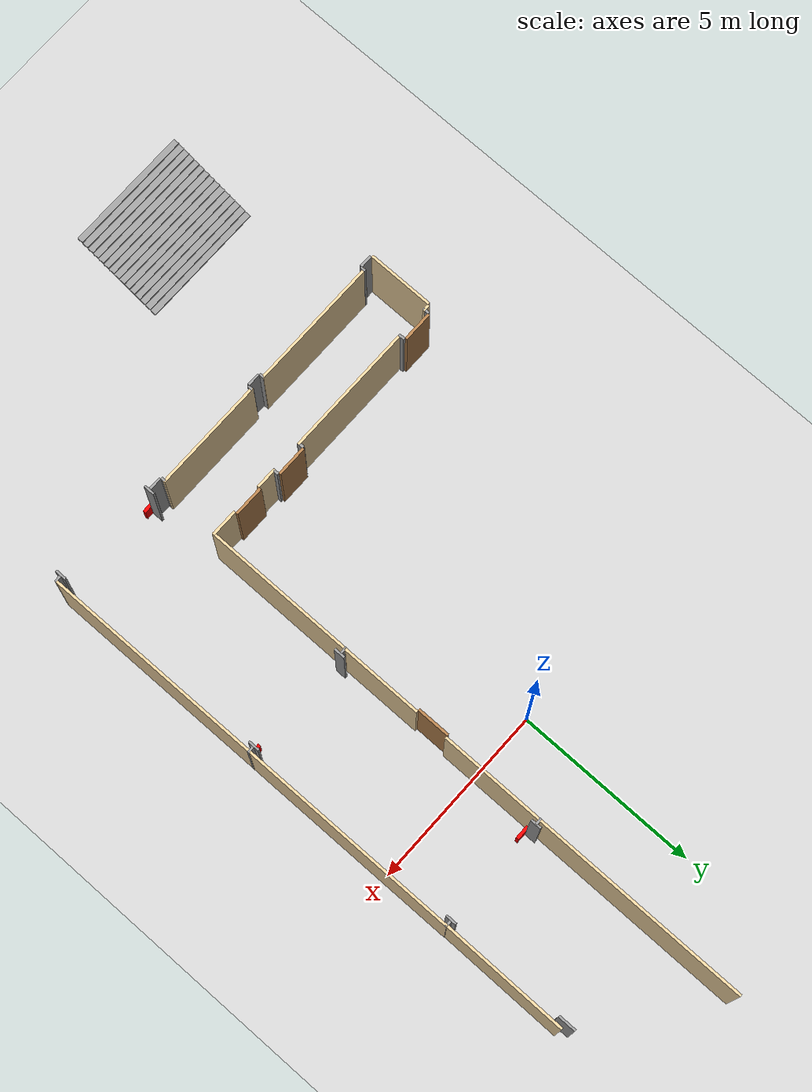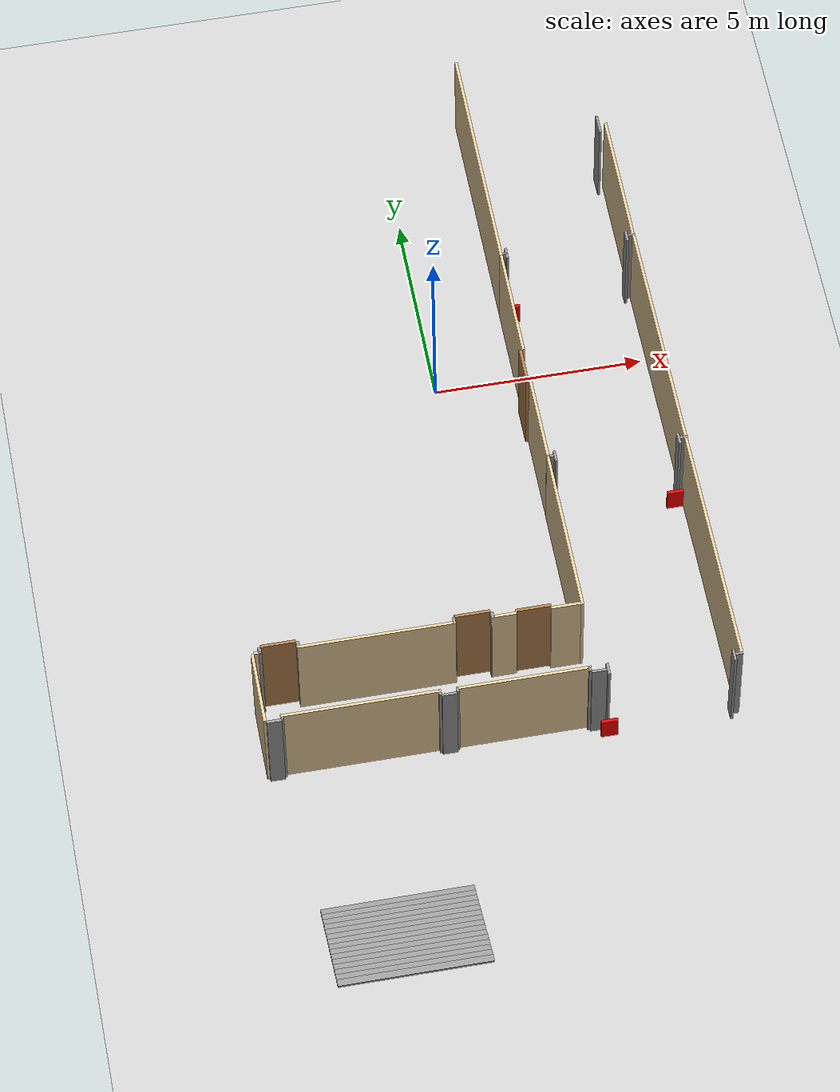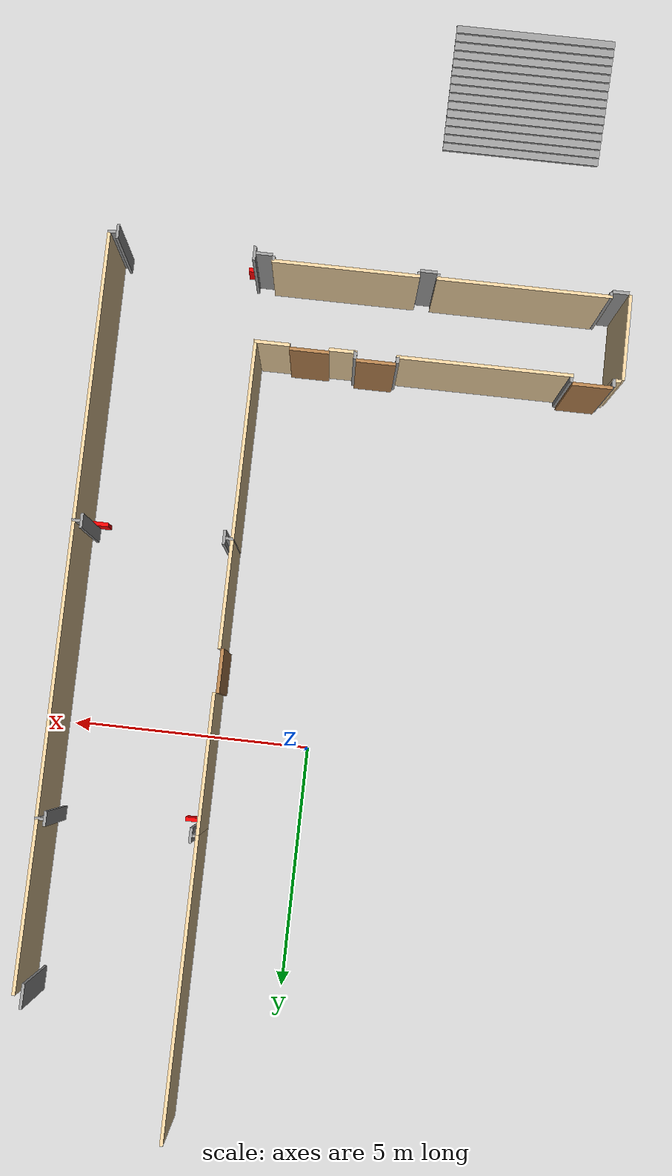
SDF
<sdf version="1.7">
 <world name="default">
  <model name="ground_plane">
   <static>1</static>
   <link name="link">
    <collision name="collision">
     <geometry><plane><normal>0 0 1</normal><size>100 100</size></plane></geometry>
     <surface>
      <contact><collide_bitmask>65535</collide_bitmask></contact>
      <friction><ode><mu>100</mu><mu2>50</mu2></ode></friction>
     </surface>
    </collision>
    <visual name="visual">
     <cast_shadows>0</cast_shadows>
     <geometry><plane><normal>0 0 1</normal><size>100 100</size></plane></geometry>
     <material>
      <script><uri>file://media/materials/scripts/gazebo.material</uri><name>Gazebo/Grey</name></script>
     </material>
    </visual>
   </link>
  </model>
  <model name="Fakulte_koridor">
   <pose>-0.108629 -0.105707 0 0 -0 0</pose>
   <link name="Stairs_0">
    <visual name="Stairs_0_Visual_0">
     <pose>-3.19496 -13.5268 0.033333 0 -0 0</pose>
     <geometry><box><size>3.48995 0.166667 0.066667</size></box></geometry>
     <material>
      <script><uri>file://media/materials/scripts/gazebo.material</uri><name>Gazebo/Grey</name></script>
      <ambient>0.333333 0.341176 0.32549 1</ambient>
     </material>
     <meta><layer>0</layer></meta>
    </visual>
    <collision name="Stairs_0_Collision_0">
     <geometry><box><size>3.48995 0.166667 0.066667</size></box></geometry>
     <pose>-3.19496 -13.5268 0.033333 0 -0 0</pose>
    </collision>
    <visual name="Stairs_0_Visual_1">
     <pose>-3.19496 -13.6934 0.1 0 -0 0</pose>
     <geometry><box><size>3.48995 0.166667 0.066667</size></box></geometry>
     <material>
      <script><uri>file://media/materials/scripts/gazebo.material</uri><name>Gazebo/Grey</name></script>
      <ambient>0.333333 0.341176 0.32549 1</ambient>
     </material>
     <meta><layer>0</layer></meta>
    </visual>
    <collision name="Stairs_0_Collision_1">
     <geometry><box><size>3.48995 0.166667 0.066667</size></box></geometry>
     <pose>-3.19496 -13.6934 0.1 0 -0 0</pose>
    </collision>
    <visual name="Stairs_0_Visual_2">
     <pose>-3.19496 -13.8601 0.166667 0 -0 0</pose>
     <geometry><box><size>3.48995 0.166667 0.066667</size></box></geometry>
     <material>
      <script><uri>file://media/materials/scripts/gazebo.material</uri><name>Gazebo/Grey</name></script>
      <ambient>0.333333 0.341176 0.32549 1</ambient>
     </material>
     <meta><layer>0</layer></meta>
    </visual>
    <collision name="Stairs_0_Collision_2">
     <geometry><box><size>3.48995 0.166667 0.066667</size></box></geometry>
     <pose>-3.19496 -13.8601 0.166667 0 -0 0</pose>
    </collision>
    <visual name="Stairs_0_Visual_3">
     <pose>-3.19496 -14.0268 0.233333 0 -0 0</pose>
     <geometry><box><size>3.48995 0.166667 0.066667</size></box></geometry>
     <material>
      <script><uri>file://media/materials/scripts/gazebo.material</uri><name>Gazebo/Grey</name></script>
      <ambient>0.333333 0.341176 0.32549 1</ambient>
     </material>
     <meta><layer>0</layer></meta>
    </visual>
    <collision name="Stairs_0_Collision_3">
     <geometry><box><size>3.48995 0.166667 0.066667</size></box></geometry>
     <pose>-3.19496 -14.0268 0.233333 0 -0 0</pose>
    </collision>
    <visual name="Stairs_0_Visual_4">
     <pose>-3.19496 -14.1934 0.3 0 -0 0</pose>
     <geometry><box><size>3.48995 0.166667 0.066667</size></box></geometry>
     <material>
      <script><uri>file://media/materials/scripts/gazebo.material</uri><name>Gazebo/Grey</name></script>
      <ambient>0.333333 0.341176 0.32549 1</ambient>
     </material>
     <meta><layer>0</layer></meta>
    </visual>
    <collision name="Stairs_0_Collision_4">
     <geometry><box><size>3.48995 0.166667 0.066667</size></box></geometry>
     <pose>-3.19496 -14.1934 0.3 0 -0 0</pose>
    </collision>
    <visual name="Stairs_0_Visual_5">
     <pose>-3.19496 -14.3601 0.366667 0 -0 0</pose>
     <geometry><box><size>3.48995 0.166667 0.066667</size></box></geometry>
     <material>
      <script><uri>file://media/materials/scripts/gazebo.material</uri><name>Gazebo/Grey</name></script>
      <ambient>0.333333 0.341176 0.32549 1</ambient>
     </material>
     <meta><layer>0</layer></meta>
    </visual>
    <collision name="Stairs_0_Collision_5">
     <geometry><box><size>3.48995 0.166667 0.066667</size></box></geometry>
     <pose>-3.19496 -14.3601 0.366667 0 -0 0</pose>
    </collision>
    <visual name="Stairs_0_Visual_6">
     <pose>-3.19496 -14.5268 0.433333 0 -0 0</pose>
     <geometry><box><size>3.48995 0.166667 0.066667</size></box></geometry>
     <material>
      <script><uri>file://media/materials/scripts/gazebo.material</uri><name>Gazebo/Grey</name></script>
      <ambient>0.333333 0.341176 0.32549 1</ambient>
     </material>
     <meta><layer>0</layer></meta>
    </visual>
    <collision name="Stairs_0_Collision_6">
     <geometry><box><size>3.48995 0.166667 0.066667</size></box></geometry>
     <pose>-3.19496 -14.5268 0.433333 0 -0 0</pose>
    </collision>
    <visual name="Stairs_0_Visual_7">
     <pose>-3.19496 -14.6934 0.5 0 -0 0</pose>
     <geometry><box><size>3.48995 0.166667 0.066667</size></box></geometry>
     <material>
      <script><uri>file://media/materials/scripts/gazebo.material</uri><name>Gazebo/Grey</name></script>
      <ambient>0.333333 0.341176 0.32549 1</ambient>
     </material>
     <meta><layer>0</layer></meta>
    </visual>
    <collision name="Stairs_0_Collision_7">
     <geometry><box><size>3.48995 0.166667 0.066667</size></box></geometry>
     <pose>-3.19496 -14.6934 0.5 0 -0 0</pose>
    </collision>
    <visual name="Stairs_0_Visual_8">
     <pose>-3.19496 -14.8601 0.566667 0 -0 0</pose>
     <geometry><box><size>3.48995 0.166667 0.066667</size></box></geometry>
     <material>
      <script><uri>file://media/materials/scripts/gazebo.material</uri><name>Gazebo/Grey</name></script>
      <ambient>0.333333 0.341176 0.32549 1</ambient>
     </material>
     <meta><layer>0</layer></meta>
    </visual>
    <collision name="Stairs_0_Collision_8">
     <geometry><box><size>3.48995 0.166667 0.066667</size></box></geometry>
     <pose>-3.19496 -14.8601 0.566667 0 -0 0</pose>
    </collision>
    <visual name="Stairs_0_Visual_9">
     <pose>-3.19496 -15.0268 0.633333 0 -0 0</pose>
     <geometry><box><size>3.48995 0.166667 0.066667</size></box></geometry>
     <material>
      <script><uri>file://media/materials/scripts/gazebo.material</uri><name>Gazebo/Grey</name></script>
      <ambient>0.333333 0.341176 0.32549 1</ambient>
     </material>
     <meta><layer>0</layer></meta>
    </visual>
    <collision name="Stairs_0_Collision_9">
     <geometry><box><size>3.48995 0.166667 0.066667</size></box></geometry>
     <pose>-3.19496 -15.0268 0.633333 0 -0 0</pose>
    </collision>
    <visual name="Stairs_0_Visual_10">
     <pose>-3.19496 -15.1934 0.7 0 -0 0</pose>
     <geometry><box><size>3.48995 0.166667 0.066667</size></box></geometry>
     <material>
      <script><uri>file://media/materials/scripts/gazebo.material</uri><name>Gazebo/Grey</name></script>
      <ambient>0.333333 0.341176 0.32549 1</ambient>
     </material>
     <meta><layer>0</layer></meta>
    </visual>
    <collision name="Stairs_0_Collision_10">
     <geometry><box><size>3.48995 0.166667 0.066667</size></box></geometry>
     <pose>-3.19496 -15.1934 0.7 0 -0 0</pose>
    </collision>
    <visual name="Stairs_0_Visual_11">
     <pose>-3.19496 -15.3601 0.766667 0 -0 0</pose>
     <geometry><box><size>3.48995 0.166667 0.066667</size></box></geometry>
     <material>
      <script><uri>file://media/materials/scripts/gazebo.material</uri><name>Gazebo/Grey</name></script>
      <ambient>0.333333 0.341176 0.32549 1</ambient>
     </material>
     <meta><layer>0</layer></meta>
    </visual>
    <collision name="Stairs_0_Collision_11">
     <geometry><box><size>3.48995 0.166667 0.066667</size></box></geometry>
     <pose>-3.19496 -15.3601 0.766667 0 -0 0</pose>
    </collision>
    <visual name="Stairs_0_Visual_12">
     <pose>-3.19496 -15.5268 0.833333 0 -0 0</pose>
     <geometry><box><size>3.48995 0.166667 0.066667</size></box></geometry>
     <material>
      <script><uri>file://media/materials/scripts/gazebo.material</uri><name>Gazebo/Grey</name></script>
      <ambient>0.333333 0.341176 0.32549 1</ambient>
     </material>
     <meta><layer>0</layer></meta>
    </visual>
    <collision name="Stairs_0_Collision_12">
     <geometry><box><size>3.48995 0.166667 0.066667</size></box></geometry>
     <pose>-3.19496 -15.5268 0.833333 0 -0 0</pose>
    </collision>
    <visual name="Stairs_0_Visual_13">
     <pose>-3.19496 -15.6934 0.9 0 -0 0</pose>
     <geometry><box><size>3.48995 0.166667 0.066667</size></box></geometry>
     <material>
      <script><uri>file://media/materials/scripts/gazebo.material</uri><name>Gazebo/Grey</name></script>
      <ambient>0.333333 0.341176 0.32549 1</ambient>
     </material>
     <meta><layer>0</layer></meta>
    </visual>
    <collision name="Stairs_0_Collision_13">
     <geometry><box><size>3.48995 0.166667 0.066667</size></box></geometry>
     <pose>-3.19496 -15.6934 0.9 0 -0 0</pose>
    </collision>
    <visual name="Stairs_0_Visual_14">
     <pose>-3.19496 -15.8601 0.966667 0 -0 0</pose>
     <geometry><box><size>3.48995 0.166667 0.066667</size></box></geometry>
     <material>
      <script><uri>file://media/materials/scripts/gazebo.material</uri><name>Gazebo/Grey</name></script>
      <ambient>0.333333 0.341176 0.32549 1</ambient>
     </material>
     <meta><layer>0</layer></meta>
    </visual>
    <collision name="Stairs_0_Collision_14">
     <geometry><box><size>3.48995 0.166667 0.066667</size></box></geometry>
     <pose>-3.19496 -15.8601 0.966667 0 -0 0</pose>
    </collision>
   </link>
   <link name="Wall_178">
    <collision name="Wall_178_Collision">
     <geometry><box><size>5.995 0.07 2.5</size></box></geometry>
     <pose>0 0 1.25 0 -0 0</pose>
    </collision>
    <visual name="Wall_178_Visual">
     <pose>0 0 1.25 0 -0 0</pose>
     <geometry><box><size>5.995 0.07 2.5</size></box></geometry>
     <material>
      <script><uri>file://media/materials/scripts/gazebo.material</uri><name>Gazebo/Grey</name></script>
      <ambient>0.921569 0.807843 0.615686 1</ambient>
     </material>
     <meta><layer>0</layer></meta>
    </visual>
    <pose>2.05863 5.00721 0 0 -0 -1.5708</pose>
   </link>
   <link name="Wall_180">
    <collision name="Wall_180_Collision">
     <geometry><box><size>0.175 0.06 2.5</size></box></geometry>
     <pose>0 0 1.25 0 -0 0</pose>
    </collision>
    <visual name="Wall_180_Visual">
     <pose>0 0 1.25 0 -0 0</pose>
     <geometry><box><size>0.175 0.06 2.5</size></box></geometry>
     <material>
      <script><uri>file://media/materials/scripts/gazebo.material</uri><name>Gazebo/Grey</name></script>
      <ambient>0.180392 0.203922 0.211765 1</ambient>
     </material>
     <meta><layer>0</layer></meta>
    </visual>
    <pose>2.11134 2.04088 0 0 -0 0</pose>
   </link>
   <link name="Wall_182">
    <collision name="Wall_182_Collision">
     <geometry><box><size>0.3 0.06 2.5</size></box></geometry>
     <pose>0 0 1.25 0 -0 0</pose>
    </collision>
    <visual name="Wall_182_Visual">
     <pose>0 0 1.25 0 -0 0</pose>
     <geometry><box><size>0.3 0.06 2.5</size></box></geometry>
     <material>
      <script><uri>file://media/materials/scripts/gazebo.material</uri><name>Gazebo/Grey</name></script>
      <ambient>0.180392 0.203922 0.211765 1</ambient>
     </material>
     <meta><layer>0</layer></meta>
    </visual>
    <pose>2.19078 2.04124 0 0 -0 -1.5708</pose>
   </link>
   <link name="Wall_184">
    <collision name="Wall_184_Collision">
     <geometry><box><size>2.842 0.07 2.5</size></box></geometry>
     <pose>0 0 1.25 0 -0 0</pose>
    </collision>
    <visual name="Wall_184_Visual">
     <pose>0 0 1.25 0 -0 0</pose>
     <geometry><box><size>2.842 0.07 2.5</size></box></geometry>
     <material>
      <script><uri>file://media/materials/scripts/gazebo.material</uri><name>Gazebo/Grey</name></script>
      <ambient>0.921569 0.807843 0.615686 1</ambient>
     </material>
     <meta><layer>0</layer></meta>
    </visual>
    <pose>2.05811 0.604001 0 0 -0 -1.5708</pose>
   </link>
   <link name="Wall_186">
    <collision name="Wall_186_Collision">
     <geometry><box><size>2.21 0.07 2.5</size></box></geometry>
     <pose>0 0 1.25 0 -0 0</pose>
    </collision>
    <visual name="Wall_186_Visual">
     <pose>0 0 1.25 0 -0 0</pose>
     <geometry><box><size>2.21 0.07 2.5</size></box></geometry>
     <material>
      <script><uri>file://media/materials/scripts/gazebo.material</uri><name>Gazebo/Grey</name></script>
      <ambient>0.921569 0.807843 0.615686 1</ambient>
     </material>
     <meta><layer>0</layer></meta>
    </visual>
    <pose>2.05119 -2.80108 0 0 -0 -1.5708</pose>
   </link>
   <link name="Wall_188">
    <collision name="Wall_188_Collision">
     <geometry><box><size>0.895 0.07 2.5</size></box></geometry>
     <pose>0 0 1.25 0 -0 0</pose>
    </collision>
    <visual name="Wall_188_Visual">
     <pose>0 0 1.25 0 -0 0</pose>
     <geometry><box><size>0.895 0.07 2.5</size></box></geometry>
     <material>
      <script><uri>file://media/materials/scripts/gazebo.material</uri><name>Gazebo/Wood</name></script>
      <ambient>1 1 1 1</ambient>
     </material>
     <meta><layer>0</layer></meta>
    </visual>
    <pose>1.98547 -1.25931 0 0 -0 -1.5708</pose>
   </link>
   <link name="Wall_190">
    <collision name="Wall_190_Collision">
     <geometry><box><size>0.175 0.06 2.5</size></box></geometry>
     <pose>0 0 1.25 0 -0 0</pose>
    </collision>
    <visual name="Wall_190_Visual">
     <pose>0 0 1.25 0 -0 0</pose>
     <geometry><box><size>0.175 0.06 2.5</size></box></geometry>
     <material>
      <script><uri>file://media/materials/scripts/gazebo.material</uri><name>Gazebo/Grey</name></script>
      <ambient>0.180392 0.203922 0.211765 1</ambient>
     </material>
     <meta><layer>0</layer></meta>
    </visual>
    <pose>2.09974 -3.92485 0 0 -0 0</pose>
   </link>
   <link name="Wall_342">
    <collision name="Wall_342_Collision">
     <geometry><box><size>0.3 0.06 2.5</size></box></geometry>
     <pose>0 0 1.25 0 -0 0</pose>
    </collision>
    <visual name="Wall_342_Visual">
     <pose>0 0 1.25 0 -0 0</pose>
     <geometry><box><size>0.3 0.06 2.5</size></box></geometry>
     <material>
      <script><uri>file://media/materials/scripts/gazebo.material</uri><name>Gazebo/Grey</name></script>
      <ambient>0.180392 0.203922 0.211765 1</ambient>
     </material>
     <meta><layer>0</layer></meta>
    </visual>
    <pose>2.21449 -3.94612 0 0 -0 -1.5708</pose>
   </link>
   <link name="Wall_344">
    <collision name="Wall_344_Collision">
     <geometry><box><size>4.16 0.07 2.5</size></box></geometry>
     <pose>0 0 1.25 0 -0 0</pose>
    </collision>
    <visual name="Wall_344_Visual">
     <pose>0 0 1.25 0 -0 0</pose>
     <geometry><box><size>4.16 0.07 2.5</size></box></geometry>
     <material>
      <script><uri>file://media/materials/scripts/gazebo.material</uri><name>Gazebo/Grey</name></script>
      <ambient>0.921569 0.807843 0.615686 1</ambient>
     </material>
     <meta><layer>0</layer></meta>
    </visual>
    <pose>2.04668 -5.99595 0 0 -0 -1.5708</pose>
   </link>
   <link name="Wall_348">
    <collision name="Wall_348_Collision">
     <geometry><box><size>0.745 0.07 2.5</size></box></geometry>
     <pose>0 0 1.25 0 -0 0</pose>
    </collision>
    <visual name="Wall_348_Visual">
     <pose>0 0 1.25 0 -0 0</pose>
     <geometry><box><size>0.745 0.07 2.5</size></box></geometry>
     <material>
      <script><uri>file://media/materials/scripts/gazebo.material</uri><name>Gazebo/Grey</name></script>
      <ambient>0.921569 0.807843 0.615686 1</ambient>
     </material>
     <meta><layer>0</layer></meta>
    </visual>
    <pose>1.70111 -8.03814 0 0 -0 0</pose>
   </link>
   <link name="Wall_350">
    <collision name="Wall_350_Collision">
     <geometry><box><size>0.825 0.07 2.5</size></box></geometry>
     <pose>0 0 1.25 0 -0 0</pose>
    </collision>
    <visual name="Wall_350_Visual">
     <pose>0 0 1.25 0 -0 0</pose>
     <geometry><box><size>0.825 0.07 2.5</size></box></geometry>
     <material>
      <script><uri>file://media/materials/scripts/gazebo.material</uri><name>Gazebo/Wood</name></script>
      <ambient>1 1 1 1</ambient>
     </material>
     <meta><layer>0</layer></meta>
    </visual>
    <pose>0.927815 -7.96515 0 0 -0 3.14159</pose>
   </link>
   <link name="Wall_352">
    <collision name="Wall_352_Collision">
     <geometry><box><size>0.58 0.07 2.5</size></box></geometry>
     <pose>0 0 1.25 0 -0 0</pose>
    </collision>
    <visual name="Wall_352_Visual">
     <pose>0 0 1.25 0 -0 0</pose>
     <geometry><box><size>0.58 0.07 2.5</size></box></geometry>
     <material>
      <script><uri>file://media/materials/scripts/gazebo.material</uri><name>Gazebo/Grey</name></script>
      <ambient>0.921569 0.807843 0.615686 1</ambient>
     </material>
     <meta><layer>0</layer></meta>
    </visual>
    <pose>0.242096 -8.03226 0 0 -0 0</pose>
   </link>
   <link name="Wall_354">
    <collision name="Wall_354_Collision">
     <geometry><box><size>0.17 0.07 2.5</size></box></geometry>
     <pose>0 0 1.25 0 -0 0</pose>
    </collision>
    <visual name="Wall_354_Visual">
     <pose>0 0 1.25 0 -0 0</pose>
     <geometry><box><size>0.17 0.07 2.5</size></box></geometry>
     <material>
      <script><uri>file://media/materials/scripts/gazebo.material</uri><name>Gazebo/Grey</name></script>
      <ambient>1 1 1 1</ambient>
     </material>
     <meta><layer>0</layer></meta>
    </visual>
    <pose>-0.019371 -7.98029 0 0 -0 1.5708</pose>
   </link>
   <link name="Wall_356">
    <collision name="Wall_356_Collision">
     <geometry><box><size>0.825 0.07 2.5</size></box></geometry>
     <pose>0 0 1.25 0 -0 0</pose>
    </collision>
    <visual name="Wall_356_Visual">
     <pose>0 0 1.25 0 -0 0</pose>
     <geometry><box><size>0.825 0.07 2.5</size></box></geometry>
     <material>
      <script><uri>file://media/materials/scripts/gazebo.material</uri><name>Gazebo/Wood</name></script>
      <ambient>1 1 1 1</ambient>
     </material>
     <meta><layer>0</layer></meta>
    </visual>
    <pose>-0.460042 -7.86803 0 0 -0 0</pose>
   </link>
   <link name="Wall_358">
    <collision name="Wall_358_Collision">
     <geometry><box><size>0.17 0.07 2.5</size></box></geometry>
     <pose>0 0 1.25 0 -0 0</pose>
    </collision>
    <visual name="Wall_358_Visual">
     <pose>0 0 1.25 0 -0 0</pose>
     <geometry><box><size>0.17 0.07 2.5</size></box></geometry>
     <material>
      <script><uri>file://media/materials/scripts/gazebo.material</uri><name>Gazebo/Grey</name></script>
      <ambient>1 1 1 1</ambient>
     </material>
     <meta><layer>0</layer></meta>
    </visual>
    <pose>-0.896745 -7.97567 0 0 -0 -1.5708</pose>
   </link>
   <link name="Wall_360">
    <collision name="Wall_360_Collision">
     <geometry><box><size>3.637 0.07 2.5</size></box></geometry>
     <pose>0 0 1.25 0 -0 0</pose>
    </collision>
    <visual name="Wall_360_Visual">
     <pose>0 0 1.25 0 -0 0</pose>
     <geometry><box><size>3.637 0.07 2.5</size></box></geometry>
     <material>
      <script><uri>file://media/materials/scripts/gazebo.material</uri><name>Gazebo/Grey</name></script>
      <ambient>0.921569 0.807843 0.615686 1</ambient>
     </material>
     <meta><layer>0</layer></meta>
    </visual>
    <pose>-2.68603 -8.02689 0 0 -0 0</pose>
   </link>
   <link name="Wall_362">
    <collision name="Wall_362_Collision">
     <geometry><box><size>0.17 0.07 2.5</size></box></geometry>
     <pose>0 0 1.25 0 -0 0</pose>
    </collision>
    <visual name="Wall_362_Visual">
     <pose>0 0 1.25 0 -0 0</pose>
     <geometry><box><size>0.17 0.07 2.5</size></box></geometry>
     <material>
      <script><uri>file://media/materials/scripts/gazebo.material</uri><name>Gazebo/Grey</name></script>
      <ambient>1 1 1 1</ambient>
     </material>
     <meta><layer>0</layer></meta>
    </visual>
    <pose>-4.47183 -7.97134 0 0 -0 -1.5708</pose>
   </link>
   <link name="Wall_364">
    <collision name="Wall_364_Collision">
     <geometry><box><size>0.825 0.07 2.5</size></box></geometry>
     <pose>0 0 1.25 0 -0 0</pose>
    </collision>
    <visual name="Wall_364_Visual">
     <pose>0 0 1.25 0 -0 0</pose>
     <geometry><box><size>0.825 0.07 2.5</size></box></geometry>
     <material>
      <script><uri>file://media/materials/scripts/gazebo.material</uri><name>Gazebo/Wood</name></script>
      <ambient>1 1 1 1</ambient>
     </material>
     <meta><layer>0</layer></meta>
    </visual>
    <pose>-4.91202 -7.86091 0 0 -0 0</pose>
   </link>
   <link name="Wall_366">
    <collision name="Wall_366_Collision">
     <geometry><box><size>0.17 0.07 2.5</size></box></geometry>
     <pose>0 0 1.25 0 -0 0</pose>
    </collision>
    <visual name="Wall_366_Visual">
     <pose>0 0 1.25 0 -0 0</pose>
     <geometry><box><size>0.17 0.07 2.5</size></box></geometry>
     <material>
      <script><uri>file://media/materials/scripts/gazebo.material</uri><name>Gazebo/Grey</name></script>
      <ambient>1 1 1 1</ambient>
     </material>
     <meta><layer>0</layer></meta>
    </visual>
    <pose>-5.34479 -7.96618 0 0 -0 -1.5708</pose>
   </link>
   <link name="Wall_368">
    <collision name="Wall_368_Collision">
     <geometry><box><size>0.182 0.07 2.5</size></box></geometry>
     <pose>0 0 1.25 0 -0 0</pose>
    </collision>
    <visual name="Wall_368_Visual">
     <pose>0 0 1.25 0 -0 0</pose>
     <geometry><box><size>0.182 0.07 2.5</size></box></geometry>
     <material>
      <script><uri>file://media/materials/scripts/gazebo.material</uri><name>Gazebo/Grey</name></script>
      <ambient>0.921569 0.807843 0.615686 1</ambient>
     </material>
     <meta><layer>0</layer></meta>
    </visual>
    <pose>-5.39932 -8.01565 0 0 -0 0</pose>
   </link>
   <link name="Wall_370">
    <collision name="Wall_370_Collision">
     <geometry><box><size>1.805 0.07 2.5</size></box></geometry>
     <pose>0 0 1.25 0 -0 0</pose>
    </collision>
    <visual name="Wall_370_Visual">
     <pose>0 0 1.25 0 -0 0</pose>
     <geometry><box><size>1.805 0.07 2.5</size></box></geometry>
     <material>
      <script><uri>file://media/materials/scripts/gazebo.material</uri><name>Gazebo/Grey</name></script>
      <ambient>0.921569 0.807843 0.615686 1</ambient>
     </material>
     <meta><layer>0</layer></meta>
    </visual>
    <pose>-5.5237 -8.93953 0 0 -0 -1.5708</pose>
   </link>
   <link name="Wall_372">
    <collision name="Wall_372_Collision">
     <geometry><box><size>0.345 0.07 2.5</size></box></geometry>
     <pose>0 0 1.25 0 -0 0</pose>
    </collision>
    <visual name="Wall_372_Visual">
     <pose>0 0 1.25 0 -0 0</pose>
     <geometry><box><size>0.345 0.07 2.5</size></box></geometry>
     <material>
      <script><uri>file://media/materials/scripts/gazebo.material</uri><name>Gazebo/Grey</name></script>
      <ambient>0.180392 0.203922 0.211765 1</ambient>
     </material>
     <meta><layer>0</layer></meta>
    </visual>
    <pose>-5.32042 -9.87001 0 0 -0 0</pose>
   </link>
   <link name="Wall_374">
    <collision name="Wall_374_Collision">
     <geometry><box><size>0.135 0.06 2.5</size></box></geometry>
     <pose>0 0 1.25 0 -0 0</pose>
    </collision>
    <visual name="Wall_374_Visual">
     <pose>0 0 1.25 0 -0 0</pose>
     <geometry><box><size>0.135 0.06 2.5</size></box></geometry>
     <material>
      <script><uri>file://media/materials/scripts/gazebo.material</uri><name>Gazebo/Grey</name></script>
      <ambient>0.180392 0.203922 0.211765 1</ambient>
     </material>
     <meta><layer>0</layer></meta>
    </visual>
    <pose>-5.12902 -9.79057 0 0 -0 -1.5708</pose>
   </link>
   <link name="Wall_376">
    <collision name="Wall_376_Collision">
     <geometry><box><size>3.643 0.07 2.5</size></box></geometry>
     <pose>0 0 1.25 0 -0 0</pose>
    </collision>
    <visual name="Wall_376_Visual">
     <pose>0 0 1.25 0 -0 0</pose>
     <geometry><box><size>3.643 0.07 2.5</size></box></geometry>
     <material>
      <script><uri>file://media/materials/scripts/gazebo.material</uri><name>Gazebo/Grey</name></script>
      <ambient>0.921569 0.807843 0.615686 1</ambient>
     </material>
     <meta><layer>0</layer></meta>
    </visual>
    <pose>-3.34252 -9.76038 0 0 -0 0</pose>
   </link>
   <link name="Wall_378">
    <collision name="Wall_378_Collision">
     <geometry><box><size>0.135 0.06 2.5</size></box></geometry>
     <pose>0 0 1.25 0 -0 0</pose>
    </collision>
    <visual name="Wall_378_Visual">
     <pose>0 0 1.25 0 -0 0</pose>
     <geometry><box><size>0.135 0.06 2.5</size></box></geometry>
     <material>
      <script><uri>file://media/materials/scripts/gazebo.material</uri><name>Gazebo/Grey</name></script>
      <ambient>1 1 1 1</ambient>
     </material>
     <meta><layer>0</layer></meta>
    </visual>
    <pose>-1.54768 -9.79788 0 0 -0 -1.5708</pose>
   </link>
   <link name="Wall_380">
    <collision name="Wall_380_Collision">
     <geometry><box><size>0.35 0.06 2.5</size></box></geometry>
     <pose>0 0 1.25 0 -0 0</pose>
    </collision>
    <visual name="Wall_380_Visual">
     <pose>0 0 1.25 0 -0 0</pose>
     <geometry><box><size>0.35 0.06 2.5</size></box></geometry>
     <material>
      <script><uri>file://media/materials/scripts/gazebo.material</uri><name>Gazebo/Grey</name></script>
      <ambient>1 1 1 1</ambient>
     </material>
     <meta><layer>0</layer></meta>
    </visual>
    <pose>-1.34421 -9.88463 0 0 -0 0</pose>
   </link>
   <link name="Wall_382">
    <collision name="Wall_382_Collision">
     <geometry><box><size>0.135 0.06 2.5</size></box></geometry>
     <pose>0 0 1.25 0 -0 0</pose>
    </collision>
    <visual name="Wall_382_Visual">
     <pose>0 0 1.25 0 -0 0</pose>
     <geometry><box><size>0.135 0.06 2.5</size></box></geometry>
     <material>
      <script><uri>file://media/materials/scripts/gazebo.material</uri><name>Gazebo/Grey</name></script>
      <ambient>1 1 1 1</ambient>
     </material>
     <meta><layer>0</layer></meta>
    </visual>
    <pose>-1.1457 -9.79788 0 0 -0 -1.5708</pose>
   </link>
   <link name="Wall_384">
    <collision name="Wall_384_Collision">
     <geometry><box><size>3.081 0.07 2.5</size></box></geometry>
     <pose>0 0 1.25 0 -0 0</pose>
    </collision>
    <visual name="Wall_384_Visual">
     <pose>0 0 1.25 0 -0 0</pose>
     <geometry><box><size>3.081 0.07 2.5</size></box></geometry>
     <material>
      <script><uri>file://media/materials/scripts/gazebo.material</uri><name>Gazebo/Grey</name></script>
      <ambient>0.921569 0.807843 0.615686 1</ambient>
     </material>
     <meta><layer>0</layer></meta>
    </visual>
    <pose>0.365469 -9.76534 0 0 -0 0</pose>
   </link>
   <link name="Wall_386">
    <collision name="Wall_386_Collision">
     <geometry><box><size>0.135 0.06 2.5</size></box></geometry>
     <pose>0 0 1.25 0 -0 0</pose>
    </collision>
    <visual name="Wall_386_Visual">
     <pose>0 0 1.25 0 -0 0</pose>
     <geometry><box><size>0.135 0.06 2.5</size></box></geometry>
     <material>
      <script><uri>file://media/materials/scripts/gazebo.material</uri><name>Gazebo/Grey</name></script>
      <ambient>1 1 1 1</ambient>
     </material>
     <meta><layer>0</layer></meta>
    </visual>
    <pose>1.87353 -9.80307 0 0 -0 -1.5708</pose>
   </link>
   <link name="Wall_388">
    <collision name="Wall_388_Collision">
     <geometry><box><size>0.35 0.06 2.5</size></box></geometry>
     <pose>0 0 1.25 0 -0 0</pose>
    </collision>
    <visual name="Wall_388_Visual">
     <pose>0 0 1.25 0 -0 0</pose>
     <geometry><box><size>0.35 0.06 2.5</size></box></geometry>
     <material>
      <script><uri>file://media/materials/scripts/gazebo.material</uri><name>Gazebo/Grey</name></script>
      <ambient>0.180392 0.203922 0.211765 1</ambient>
     </material>
     <meta><layer>0</layer></meta>
    </visual>
    <pose>2.07737 -9.89165 0 0 -0 0</pose>
   </link>
   <link name="Wall_390">
    <collision name="Wall_390_Collision">
     <geometry><box><size>0.3 0.06 2.5</size></box></geometry>
     <pose>0 0 1.25 0 -0 0</pose>
    </collision>
    <visual name="Wall_390_Visual">
     <pose>0 0 1.25 0 -0 0</pose>
     <geometry><box><size>0.3 0.06 2.5</size></box></geometry>
     <material>
      <script><uri>file://media/materials/scripts/gazebo.material</uri><name>Gazebo/Grey</name></script>
      <ambient>0.180392 0.203922 0.211765 1</ambient>
     </material>
     <meta><layer>0</layer></meta>
    </visual>
    <pose>2.27698 -9.88557 0 0 -0 -1.5708</pose>
   </link>
   <link name="Wall_54">
    <collision name="Wall_54_Collision">
     <geometry><box><size>0.3 0.06 2.5</size></box></geometry>
     <pose>0 0 1.25 0 -0 0</pose>
    </collision>
    <visual name="Wall_54_Visual">
     <pose>0 0 1.25 0 -0 0</pose>
     <geometry><box><size>0.3 0.06 2.5</size></box></geometry>
     <material>
      <script><uri>file://media/materials/scripts/gazebo.material</uri><name>Gazebo/Grey</name></script>
      <ambient>0.180392 0.203922 0.211765 1</ambient>
     </material>
     <meta><layer>0</layer></meta>
    </visual>
    <pose>5.14201 -10.0373 0 0 -0 -1.5708</pose>
   </link>
   <link name="Wall_56">
    <collision name="Wall_56_Collision">
     <geometry><box><size>0.174282 0.06 2.5</size></box></geometry>
     <pose>0 0 1.25 0 -0 0</pose>
    </collision>
    <visual name="Wall_56_Visual">
     <pose>0 0 1.25 0 -0 0</pose>
     <geometry><box><size>0.174282 0.06 2.5</size></box></geometry>
     <material>
      <script><uri>file://media/materials/scripts/gazebo.material</uri><name>Gazebo/Grey</name></script>
      <ambient>0.180392 0.203922 0.211765 1</ambient>
     </material>
     <meta><layer>0</layer></meta>
    </visual>
    <pose>5.25486 -10.0207 0 0 -0 0.01864</pose>
   </link>
   <link name="Wall_59">
    <collision name="Wall_59_Collision">
     <geometry><box><size>6.00406 0.07 2.5</size></box></geometry>
     <pose>0 0 1.25 0 -0 0</pose>
    </collision>
    <visual name="Wall_59_Visual">
     <pose>0 0 1.25 0 -0 0</pose>
     <geometry><box><size>6.00406 0.07 2.5</size></box></geometry>
     <material>
      <script><uri>file://media/materials/scripts/gazebo.material</uri><name>Gazebo/Grey</name></script>
      <ambient>0.921569 0.807843 0.615686 1</ambient>
     </material>
     <meta><layer>0</layer></meta>
    </visual>
    <pose>5.30324 -6.9904 0 0 -0 -1.56641</pose>
   </link>
   <link name="Wall_61">
    <collision name="Wall_61_Collision">
     <geometry><box><size>0.175 0.06 2.5</size></box></geometry>
     <pose>0 0 1.25 0 -0 0</pose>
    </collision>
    <visual name="Wall_61_Visual">
     <pose>0 0 1.25 0 -0 0</pose>
     <geometry><box><size>0.175 0.06 2.5</size></box></geometry>
     <material>
      <script><uri>file://media/materials/scripts/gazebo.material</uri><name>Gazebo/Grey</name></script>
      <ambient>0.180392 0.203922 0.211765 1</ambient>
     </material>
     <meta><layer>0</layer></meta>
    </visual>
    <pose>5.2454 -3.96447 0 0 -0 0</pose>
   </link>
   <link name="Wall_63">
    <collision name="Wall_63_Collision">
     <geometry><box><size>0.3 0.06 2.5</size></box></geometry>
     <pose>0 0 1.25 0 -0 0</pose>
    </collision>
    <visual name="Wall_63_Visual">
     <pose>0 0 1.25 0 -0 0</pose>
     <geometry><box><size>0.3 0.06 2.5</size></box></geometry>
     <material>
      <script><uri>file://media/materials/scripts/gazebo.material</uri><name>Gazebo/Grey</name></script>
      <ambient>0.180392 0.203922 0.211765 1</ambient>
     </material>
     <meta><layer>0</layer></meta>
    </visual>
    <pose>5.12944 -3.9708 0 0 -0 -1.5708</pose>
   </link>
   <link name="Wall_65">
    <collision name="Wall_65_Collision">
     <geometry><box><size>5.99867 0.07 2.5</size></box></geometry>
     <pose>0 0 1.25 0 -0 0</pose>
    </collision>
    <visual name="Wall_65_Visual">
     <pose>0 0 1.25 0 -0 0</pose>
     <geometry><box><size>5.99867 0.07 2.5</size></box></geometry>
     <material>
      <script><uri>file://media/materials/scripts/gazebo.material</uri><name>Gazebo/Grey</name></script>
      <ambient>0.921569 0.807843 0.615686 1</ambient>
     </material>
     <meta><layer>0</layer></meta>
    </visual>
    <pose>5.28157 -0.942477 0 0 -0 -1.56763</pose>
   </link>
   <link name="Wall_67">
    <collision name="Wall_67_Collision">
     <geometry><box><size>0.175 0.06 2.5</size></box></geometry>
     <pose>0 0 1.25 0 -0 0</pose>
    </collision>
    <visual name="Wall_67_Visual">
     <pose>0 0 1.25 0 -0 0</pose>
     <geometry><box><size>0.175 0.06 2.5</size></box></geometry>
     <material>
      <script><uri>file://media/materials/scripts/gazebo.material</uri><name>Gazebo/Grey</name></script>
      <ambient>0.180392 0.203922 0.211765 1</ambient>
     </material>
     <meta><layer>0</layer></meta>
    </visual>
    <pose>5.2184 2.03779 0 0 -0 0</pose>
   </link>
   <link name="Wall_69">
    <collision name="Wall_69_Collision">
     <geometry><box><size>0.3 0.06 2.5</size></box></geometry>
     <pose>0 0 1.25 0 -0 0</pose>
    </collision>
    <visual name="Wall_69_Visual">
     <pose>0 0 1.25 0 -0 0</pose>
     <geometry><box><size>0.3 0.06 2.5</size></box></geometry>
     <material>
      <script><uri>file://media/materials/scripts/gazebo.material</uri><name>Gazebo/Grey</name></script>
      <ambient>0.180392 0.203922 0.211765 1</ambient>
     </material>
     <meta><layer>0</layer></meta>
    </visual>
    <pose>5.10189 2.02945 0 0 -0 -1.5708</pose>
   </link>
   <link name="Wall_72">
    <collision name="Wall_72_Collision">
     <geometry><box><size>3.43521 0.07 2.5</size></box></geometry>
     <pose>0 0 1.25 0 -0 0</pose>
    </collision>
    <visual name="Wall_72_Visual">
     <pose>0 0 1.25 0 -0 0</pose>
     <geometry><box><size>3.43521 0.07 2.5</size></box></geometry>
     <material>
      <script><uri>file://media/materials/scripts/gazebo.material</uri><name>Gazebo/Grey</name></script>
      <ambient>0.921569 0.807843 0.615686 1</ambient>
     </material>
     <meta><layer>0</layer></meta>
    </visual>
    <pose>5.27097 3.7715 0 0 -0 -1.57527</pose>
   </link>
   <link name="Wall_76">
    <collision name="Wall_76_Collision">
     <geometry><box><size>0.495 0.06 2.5</size></box></geometry>
     <pose>0 0 1.25 0 -0 0</pose>
    </collision>
    <visual name="Wall_76_Visual">
     <pose>0 0 1.25 0 -0 0</pose>
     <geometry><box><size>0.495 0.06 2.5</size></box></geometry>
     <material>
      <script><uri>file://media/materials/scripts/gazebo.material</uri><name>Gazebo/Grey</name></script>
      <ambient>0.180392 0.203922 0.211765 1</ambient>
     </material>
     <meta><layer>0</layer></meta>
    </visual>
    <pose>5.10811 5.49189 0 0 -0 -1.5708</pose>
   </link>
   <static>1</static>
  </model>
  <model name="feature_kutu1_clone_2">
   <static>1</static>
   <link name="link">
    <inertial>
     <mass>1</mass>
     <inertia><ixx>0.083</ixx><ixy>0</ixy><ixz>0</ixz><iyy>0.083</iyy><iyz>0</iyz><izz>0.083</izz></inertia>
    </inertial>
    <collision name="collision"><geometry><box><size>0.385 0.085 0.6</size></box></geometry></collision>
    <visual name="visual">
     <geometry><box><size>0.385 0.085 0.6</size></box></geometry>
     <material>
      <ambient>1 0 0 1</ambient>
      <diffuse>1 0 0 1</diffuse>
      <specular>0.1 0.1 0.1 1</specular>
      <emissive>0 0 0 0</emissive>
     </material>
    </visual>
    <sensor name="my_contact" type="contact">
     <contact><collision>box_collision</collision><topic>__default_topic__</topic></contact>
    </sensor>
   </link>
   <pose>2.185 1.74 0.3 0 -0 0</pose>
  </model>
  <model name="feature_kutu1_clone_3">
   <static>1</static>
   <link name="link">
    <inertial>
     <mass>1</mass>
     <inertia><ixx>0.083</ixx><ixy>0</ixy><ixz>0</ixz><iyy>0.083</iyy><iyz>0</iyz><izz>0.083</izz></inertia>
    </inertial>
    <collision name="collision"><geometry><box><size>0.385 0.085 0.6</size></box></geometry></collision>
    <visual name="visual">
     <geometry><box><size>0.385 0.085 0.6</size></box></geometry>
     <material>
      <ambient>1 0 0 1</ambient>
      <diffuse>1 0 0 1</diffuse>
      <specular>0.1 0.1 0.1 1</specular>
      <emissive>0 0 0 0</emissive>
     </material>
    </visual>
    <sensor name="my_contact" type="contact">
     <contact><collision>box_collision</collision><topic>__default_topic__</topic></contact>
    </sensor>
   </link>
   <pose>4.95 -4.27 0.3 0 -0 0</pose>
  </model>
  <model name="feature_kutu1_clone_4">
   <static>1</static>
   <link name="link">
    <inertial>
     <mass>1</mass>
     <inertia><ixx>0.083</ixx><ixy>0</ixy><ixz>0</ixz><iyy>0.083</iyy><iyz>0</iyz><izz>0.083</izz></inertia>
    </inertial>
    <collision name="collision"><geometry><box><size>0.385 0.085 0.6</size></box></geometry></collision>
    <visual name="visual">
     <geometry><box><size>0.385 0.085 0.6</size></box></geometry>
     <material>
      <ambient>1 0 0 1</ambient>
      <diffuse>1 0 0 1</diffuse>
      <specular>0.1 0.1 0.1 1</specular>
      <emissive>0 0 0 0</emissive>
     </material>
    </visual>
    <sensor name="my_contact" type="contact">
     <contact><collision>box_collision</collision><topic>__default_topic__</topic></contact>
    </sensor>
   </link>
   <pose>2.2 -10.1859 0.3 0 -0 0</pose>
  </model>
 </world>
</sdf>
